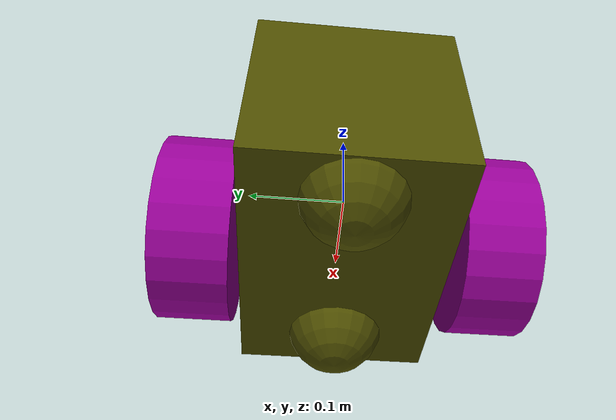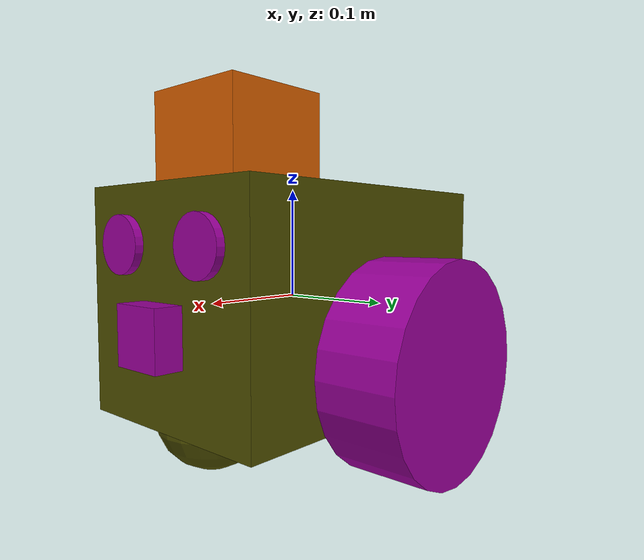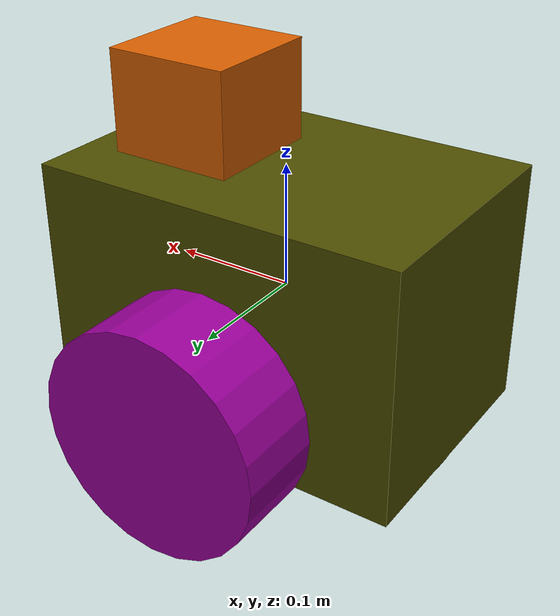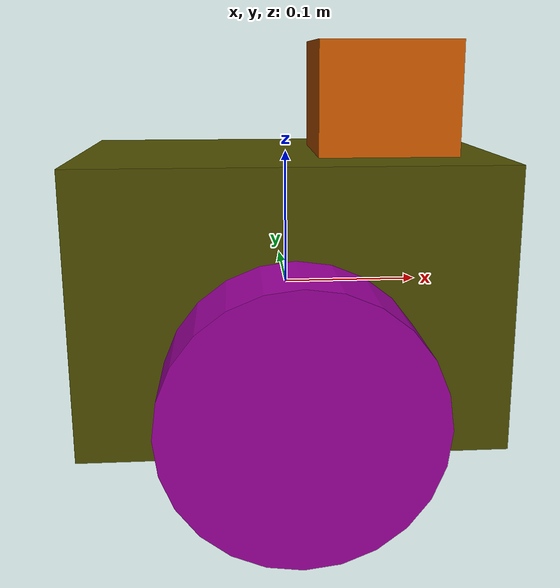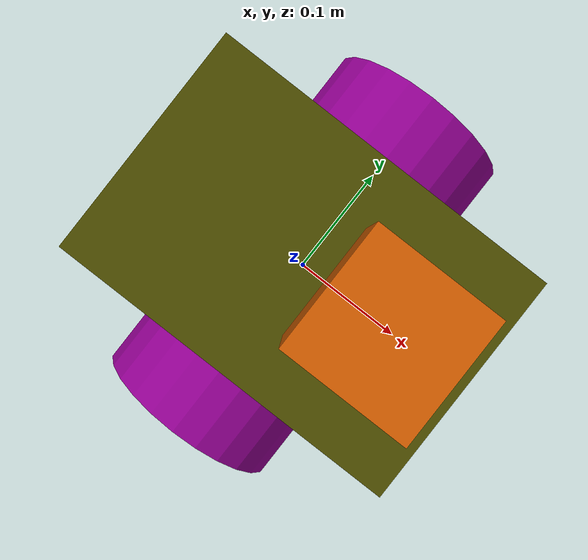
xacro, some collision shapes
<?xml version='1.0'?>

<robot name="my_robot" xmlns:xacro="http://www.ros.org/wiki/xacro">

<xacro:include filename="$(find my_robot)/urdf/my_robot.gazebo" />

<!-- Using materials file for Rvis colors-->
<xacro:include filename="$(find my_robot)/urdf/my_robot_materials.xacro" />

  <!--Empty link to connect to whole robot -->
  <link name="robot_footprint"></link>

  <joint name="robot_footprint_joint" type="fixed">
    <origin xyz="0 0 0" rpy="0 0 0"/>
    <parent link="robot_footprint" />
    <child link="chassis" />
  </joint>

  <!-- Robot chassis-->
  <link name="chassis">

    <pose>0 0 0.1 0 0 0</pose>

    <inertial>
       <mass value="15.0" />
       <origin xyz="0.0 0 0 " rpy=" 0 0 0"/>

       <inertia
          ixx="0.1" ixy="0" ixz="0"
          iyy="0.1" iyz="0" izz="0.1"
       />

    </inertial>

    <collision name="chassis_collision">
       <origin xyz="0 0 0" rpy="0 0 0"/>
       <geometry>
         <box size=".3 .2 .2" />
       </geometry>
    </collision>

    <visual name="chassis_visual">
       <origin xyz="0 0 0" rpy="0 0 0"/>
       <geometry>
         <box size=".3 .2 .2" />
       </geometry>
       <material name="yellow" />
    </visual>

   <collision name='back_caster_collision'>
      <origin xyz="-0.1 0 -0.09" rpy=" 0 0 0"/>
      <geometry>
        <sphere radius="0.0499"/>
      </geometry>
    </collision>

    <visual name='back_caster_visual'>
      <origin xyz="-0.1 0 -0.09" rpy=" 0 0 0"/>
      <geometry>
        <sphere radius="0.05"/>
      </geometry>
      <material name="yellow" />
    </visual>

    <collision name='front_caster_collision'>
      <origin xyz="0.1 0 -0.09" rpy=" 0 0 0"/>
      <geometry>
        <sphere radius="0.0499"/>
      </geometry>
    </collision>

    <visual name='front_caster_visual'>
      <origin xyz="0.1 0 -0.09" rpy=" 0 0 0"/>
      <geometry>
        <sphere radius="0.05"/>
      </geometry>
      <material name="yellow" />
    </visual>

  </link>

  <!-- Left wheel -->
  <link name="left_wheel">

    <inertial>
       <mass value="5.0" />
       <origin xyz="0.0 0 0 " rpy=" 0 1.5707 1.5707"/>

       <inertia
          ixx="0.1" ixy="0" ixz="0"
          iyy="0.1" iyz="0" izz="0.1"
       />

    </inertial>
    <collision name="left_wheel_collision">
       <origin xyz="0 0 0" rpy="0 1.5707 1.5707"/>
       <geometry>
         <cylinder radius="0.09" length="0.07"/>
       </geometry>
    </collision>

    <visual name="left_wheel_visual">
       <origin xyz="0 0 0" rpy="0 1.5707 1.5707"/>
       <geometry>
         <cylinder radius="0.09" length="0.07" />
       </geometry>
       <material name="purple" />
    </visual>

  </link>

  <!-- Joint to connect left wheel to chassis -->
  <joint type="continuous" name="left_wheel_hinge">
    <origin xyz="0 0.14 -0.05" rpy="0 0 0"/>
    <child link="left_wheel"/>
    <parent link="chassis"/>
    <axis xyz="0 1 0" rpy="0 0 0"/>
    <limit effort="10000" velocity="1000"/>
    <dynamics damping="1.0" friction="1.0"/>
  </joint>

<!-- Right wheel -->
  <link name="right_wheel">

    <inertial>
       <mass value="5.0" />
       <origin xyz="0.0 0 0 " rpy=" 0 1.5707 1.5707"/>

       <inertia
          ixx="0.1" ixy="0" ixz="0"
          iyy="0.1" iyz="0" izz="0.1"
       />

    </inertial>
    <collision name="right_wheel_collision">
       <origin xyz="0 0 0" rpy="0 1.5707 1.5707"/>
       <geometry>
         <cylinder radius="0.09" length="0.07"/>
       </geometry>
    </collision>

    <visual name="right_wheel_visual">
       <origin xyz="0 0 0" rpy="0 1.5707 1.5707"/>
       <geometry>
         <cylinder radius="0.09" length="0.07" />
       </geometry>
       <material name="purple" />
    </visual>

  </link>

  <!-- Joint to connect right wheel to chassis -->
  <joint type="continuous" name="right_wheel_hinge">
    <origin xyz="0 -0.14 -0.05" rpy="0 0 0"/>
    <child link="right_wheel"/>
    <parent link="chassis"/>
    <axis xyz="0 1 0" rpy="0 0 0"/>
    <limit effort="10000" velocity="1000"/>
    <dynamics damping="1.0" friction="1.0"/>
  </joint>

  <!-- Camera -->
  <link name="camera">
    <inertial>
       <mass value="0.1" />
       <origin xyz="0.0 0 0 " rpy=" 0 0 0"/>

       <inertia
         ixx="1e-6" ixy="0" ixz="0" iyy="1e-6" iyz="0" izz="1e-6"
       />

    </inertial>

    <collision name="camera_collision">
       <origin xyz="0 0 0" rpy="0 0 0"/>
       <geometry>
         <box size="0.05 0.05 0.05"/>
       </geometry>
    </collision>

    <visual name="camera_visual">
       <origin xyz="0 0 0" rpy="0 0 0"/>
       <geometry>
         <box size="0.05 0.05 0.05" />
       </geometry>
       <material name="purple" />
    </visual>

    <box_inertia sizeX="0.05" sizeY="0.05" sizeZ="0.05" mass="0.1">
      <origin xyz="0.0 0.0 0.0" rpy="0 0 0" />
    </box_inertia>

  </link>

  <!-- Fixed joint to connect camera to robot-->
  <joint type="fixed" name="camera_joint">
    <origin xyz="0.15 0 -0.02" rpy="0 0 0"/>
    <child link="camera"/>
    <parent link="chassis"/>
    <axis xyz="0 1 0" rpy="0 0 0"/>

  </joint>

  <!-- Lidar sensor-->
  <link name="hokuyo">

    <inertial>
       <mass value= "1e-5"/>
       <origin xyz="0.0 0 0 " rpy=" 0 0 0"/>

       <inertia
          ixx="1e-6" ixy="0" ixz="0" iyy="1e-6" iyz="0" izz="1e-6"
       />

    </inertial>

    <collision name="hokuyo_collision">
       <origin xyz="0 0 0" rpy="0 0 0"/>
       <geometry>
         <box size="0.1 0.1 0.1"/>
       </geometry>
    </collision>

    <visual name="hokuyo_visual">
       <origin xyz="0 0 0" rpy="0 0 0"/>
       <geometry>
         <mesh filename="package://my_robot/meshes/hokuyo.dae" />
       </geometry>
    </visual>

  </link>

  <!-- Fixed joint to connect lidar sensor to robot-->
   <joint type="fixed" name="hokuyo_joint">
    <origin xyz="0.07 0 .13" rpy="0 0 0"/>
    <child link="hokuyo"/>
    <parent link="chassis"/>
    <axis xyz="0 1 0" rpy="0 0 0"/>

  </joint>

  <!-- Left eye-->
  <link name="left_eye">

    <collision name="left_eye_collision">
       <origin xyz="0 0 0" rpy="1.5707 0 0"/>
       <geometry>
         <cylinder radius="0.025" length="0.015"/>
       </geometry>
    </collision>

    <visual name="left_eye_visual">
       <origin xyz="0 0 0" rpy="0 1.5707 0"/>
       <geometry>
         <cylinder radius="0.025" length="0.015"/>
       </geometry>
       <material name="purple" />
    </visual>
  </link>

 <!-- Fixed joint to connect left eye to robot-->
  <joint type="fixed" name="left_eye_joint">
    <origin xyz="0.15 0.05 0.05" rpy="0 0 0"/>
    <child link="left_eye"/>
    <parent link="chassis"/>
    <axis xyz="0 1 0" rpy="0 0 0"/>

  </joint>

  <!-- Right eye-->
  <link name="right_eye">

    <collision name="right_eye_collision">
       <origin xyz="0 0 0" rpy="1.5707 0 0"/>
       <geometry>
         <cylinder radius="0.025" length="0.015"/>
       </geometry>
    </collision>

    <visual name="right_eye_visual">
       <origin xyz="0 0 0" rpy="0 1.5707 0"/>
       <geometry>
         <cylinder radius="0.025" length="0.015"/>
       </geometry>
       <material name="purple" />
    </visual>
  </link>

 <!-- Fixed joint to connect right eye to robot-->
  <joint type="fixed" name="right_eye_joint">
    <origin xyz="0.15 -0.05 0.05" rpy="0 0 0"/>
    <child link="right_eye"/>
    <parent link="chassis"/>
    <axis xyz="0 1 0" rpy="0 0 0"/>

  </joint>

</robot>

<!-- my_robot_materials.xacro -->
<!-- File to store materials for robot-->
<robot>

  <material name="black">
     <color rgba="0.0 0.0 0.0 1.0" />
  </material>

  <material name="purple">
     <color rgba="0.6 0 0.6 1" />
  </material>

  <material name="yellow">
     <color rgba="0.3, 0.3, 0, 1" />
  </material>

</robot>
